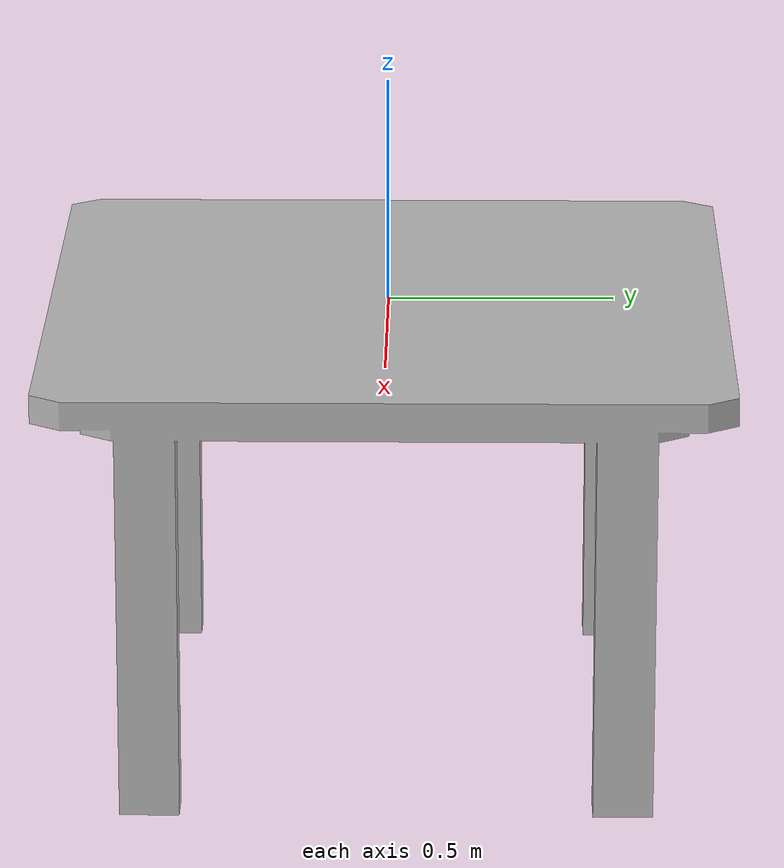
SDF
<?xml version="1.0"?>
<sdf version="1.7">
  <model name="table">
    <link name="table_body">
      <visual name="table_visual">
        <geometry>
          <mesh>
            <uri>table.obj</uri>
          </mesh>
        </geometry>
      </visual>
      <collision name="table_top">
        <pose> 0 0 -0.1 0 0 0</pose>
        <geometry>
          <box>
            <size>2.5 2.5 0.2</size>
          </box>
        </geometry>
      </collision>
    </link>
  </model>
</sdf>
